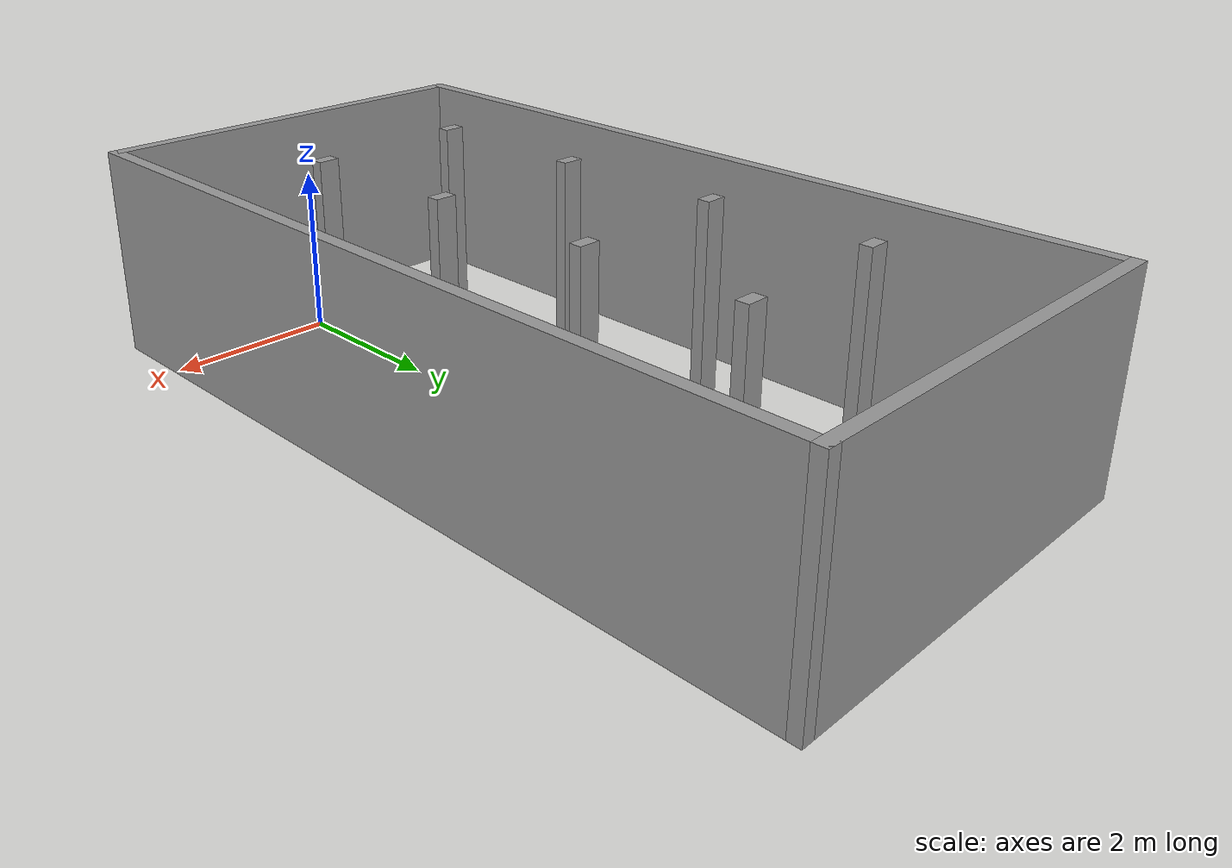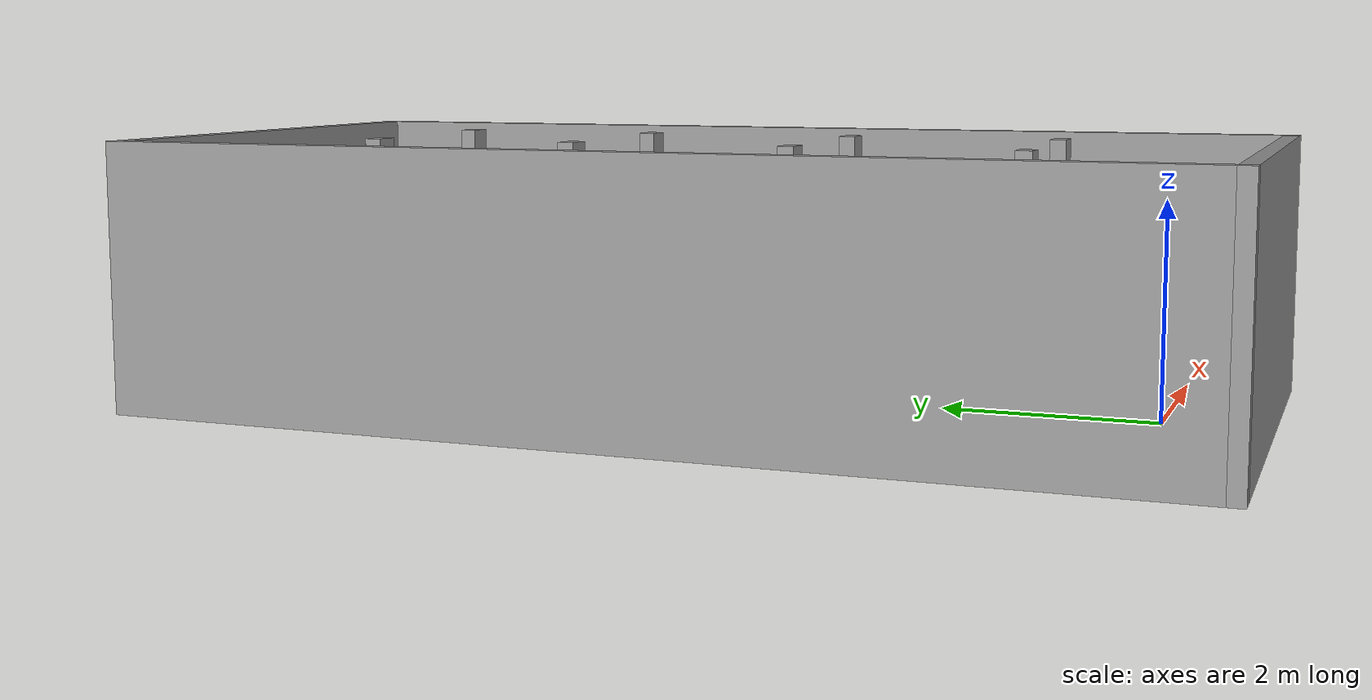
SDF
<?xml version='1.0'?>
<sdf version='1.7'>
  <model name='pole'>
    <pose>-0.435 4.015 0 0 -0 0</pose>
    <link name='Wall_1'>
      <collision name='Wall_1_Collision'>
        <geometry>
          <box>
            <size>10 0.15 2.5</size>
          </box>
        </geometry>
        <pose>0 0 1.25 0 -0 0</pose>
      </collision>
      <visual name='Wall_1_Visual'>
        <pose>0 0 1.25 0 -0 0</pose>
        <geometry>
          <box>
            <size>10 0.15 2.5</size>
          </box>
        </geometry>
        <material>
          <script>
            <uri>file://media/materials/scripts/gazebo.material</uri>
            <name>Gazebo/Grey</name>
          </script>
          <ambient>1 1 1 1</ambient>
        </material>
        <meta>
          <layer>0</layer>
        </meta>
      </visual>
      <pose>2.425 0 0 0 -0 1.5708</pose>
    </link>
    <link name='Wall_11'>
      <collision name='Wall_11_Collision'>
        <geometry>
          <box>
            <size>0.25 0.15 2.5</size>
          </box>
        </geometry>
        <pose>0 0 1.25 0 -0 0</pose>
      </collision>
      <visual name='Wall_11_Visual'>
        <pose>0 0 1.25 0 -0 0</pose>
        <geometry>
          <box>
            <size>0.25 0.15 2.5</size>
          </box>
        </geometry>
        <material>
          <script>
            <uri>file://media/materials/scripts/gazebo.material</uri>
            <name>Gazebo/Grey</name>
          </script>
          <ambient>1 1 1 1</ambient>
        </material>
        <meta>
          <layer>0</layer>
        </meta>
      </visual>
      <pose>-1.13066 1.03079 0 0 -0 3.14159</pose>
    </link>
    <link name='Wall_13'>
      <collision name='Wall_13_Collision'>
        <geometry>
          <box>
            <size>0.25 0.15 2.5</size>
          </box>
        </geometry>
        <pose>0 0 1.25 0 -0 0</pose>
      </collision>
      <visual name='Wall_13_Visual'>
        <pose>0 0 1.25 0 -0 0</pose>
        <geometry>
          <box>
            <size>0.25 0.15 2.5</size>
          </box>
        </geometry>
        <material>
          <script>
            <uri>file://media/materials/scripts/gazebo.material</uri>
            <name>Gazebo/Grey</name>
          </script>
          <ambient>1 1 1 1</ambient>
        </material>
        <meta>
          <layer>0</layer>
        </meta>
      </visual>
      <pose>-1.15309 2.97885 0 0 -0 0</pose>
    </link>
    <link name='Wall_15'>
      <collision name='Wall_15_Collision'>
        <geometry>
          <box>
            <size>0.25 0.15 2.5</size>
          </box>
        </geometry>
        <pose>0 0 1.25 0 -0 0</pose>
      </collision>
      <visual name='Wall_15_Visual'>
        <pose>0 0 1.25 0 -0 0</pose>
        <geometry>
          <box>
            <size>0.25 0.15 2.5</size>
          </box>
        </geometry>
        <material>
          <script>
            <uri>file://media/materials/scripts/gazebo.material</uri>
            <name>Gazebo/Grey</name>
          </script>
          <ambient>1 1 1 1</ambient>
        </material>
        <meta>
          <layer>0</layer>
        </meta>
      </visual>
      <pose>0.877698 -2.97682 0 0 -0 0</pose>
    </link>
    <link name='Wall_17'>
      <collision name='Wall_17_Collision'>
        <geometry>
          <box>
            <size>0.25 0.15 2.5</size>
          </box>
        </geometry>
        <pose>0 0 1.25 0 -0 0</pose>
      </collision>
      <visual name='Wall_17_Visual'>
        <pose>0 0 1.25 0 -0 0</pose>
        <geometry>
          <box>
            <size>0.25 0.15 2.5</size>
          </box>
        </geometry>
        <material>
          <script>
            <uri>file://media/materials/scripts/gazebo.material</uri>
            <name>Gazebo/Grey</name>
          </script>
          <ambient>1 1 1 1</ambient>
        </material>
        <meta>
          <layer>0</layer>
        </meta>
      </visual>
      <pose>0.811044 -0.989067 0 0 -0 0</pose>
    </link>
    <link name='Wall_19'>
      <collision name='Wall_19_Collision'>
        <geometry>
          <box>
            <size>0.25 0.15 2.5</size>
          </box>
        </geometry>
        <pose>0 0 1.25 0 -0 0</pose>
      </collision>
      <visual name='Wall_19_Visual'>
        <pose>0 0 1.25 0 -0 0</pose>
        <geometry>
          <box>
            <size>0.25 0.15 2.5</size>
          </box>
        </geometry>
        <material>
          <script>
            <uri>file://media/materials/scripts/gazebo.material</uri>
            <name>Gazebo/Grey</name>
          </script>
          <ambient>1 1 1 1</ambient>
        </material>
        <meta>
          <layer>0</layer>
        </meta>
      </visual>
      <pose>0.765418 1.0489 0 0 -0 0</pose>
    </link>
    <link name='Wall_2'>
      <collision name='Wall_2_Collision'>
        <geometry>
          <box>
            <size>5 0.15 2.5</size>
          </box>
        </geometry>
        <pose>0 0 1.25 0 -0 0</pose>
      </collision>
      <visual name='Wall_2_Visual'>
        <pose>0 0 1.25 0 -0 0</pose>
        <geometry>
          <box>
            <size>5 0.15 2.5</size>
          </box>
        </geometry>
        <material>
          <script>
            <uri>file://media/materials/scripts/gazebo.material</uri>
            <name>Gazebo/Grey</name>
          </script>
          <ambient>1 1 1 1</ambient>
        </material>
        <meta>
          <layer>0</layer>
        </meta>
      </visual>
      <pose>-0 4.925 0 0 -0 3.14159</pose>
    </link>
    <link name='Wall_21'>
      <collision name='Wall_21_Collision'>
        <geometry>
          <box>
            <size>0.25 0.15 2.5</size>
          </box>
        </geometry>
        <pose>0 0 1.25 0 -0 0</pose>
      </collision>
      <visual name='Wall_21_Visual'>
        <pose>0 0 1.25 0 -0 0</pose>
        <geometry>
          <box>
            <size>0.25 0.15 2.5</size>
          </box>
        </geometry>
        <material>
          <script>
            <uri>file://media/materials/scripts/gazebo.material</uri>
            <name>Gazebo/Grey</name>
          </script>
          <ambient>1 1 1 1</ambient>
        </material>
        <meta>
          <layer>0</layer>
        </meta>
      </visual>
      <pose>0.771063 3.02442 0 0 -0 0</pose>
    </link>
    <link name='Wall_4'>
      <collision name='Wall_4_Collision'>
        <geometry>
          <box>
            <size>5 0.15 2.5</size>
          </box>
        </geometry>
        <pose>0 0 1.25 0 -0 0</pose>
      </collision>
      <visual name='Wall_4_Visual'>
        <pose>0 0 1.25 0 -0 0</pose>
        <geometry>
          <box>
            <size>5 0.15 2.5</size>
          </box>
        </geometry>
        <material>
          <script>
            <uri>file://media/materials/scripts/gazebo.material</uri>
            <name>Gazebo/Grey</name>
          </script>
          <ambient>1 1 1 1</ambient>
        </material>
        <meta>
          <layer>0</layer>
        </meta>
      </visual>
      <pose>-0 -4.925 0 0 -0 3.14159</pose>
    </link>
    <link name='Wall_5'>
      <collision name='Wall_5_Collision'>
        <geometry>
          <box>
            <size>10 0.15 2.5</size>
          </box>
        </geometry>
        <pose>0 0 1.25 0 -0 0</pose>
      </collision>
      <visual name='Wall_5_Visual'>
        <pose>0 0 1.25 0 -0 0</pose>
        <geometry>
          <box>
            <size>10 0.15 2.5</size>
          </box>
        </geometry>
        <material>
          <script>
            <uri>file://media/materials/scripts/gazebo.material</uri>
            <name>Gazebo/Grey</name>
          </script>
          <ambient>1 1 1 1</ambient>
        </material>
        <meta>
          <layer>0</layer>
        </meta>
      </visual>
      <pose>-2.425 0 0 0 -0 1.5708</pose>
    </link>
    <link name='Wall_7'>
      <collision name='Wall_7_Collision'>
        <geometry>
          <box>
            <size>0.25 0.15 2.5</size>
          </box>
        </geometry>
        <pose>0 0 1.25 0 -0 0</pose>
      </collision>
      <visual name='Wall_7_Visual'>
        <pose>0 0 1.25 0 -0 0</pose>
        <geometry>
          <box>
            <size>0.25 0.15 2.5</size>
          </box>
        </geometry>
        <material>
          <script>
            <uri>file://media/materials/scripts/gazebo.material</uri>
            <name>Gazebo/Grey</name>
          </script>
          <ambient>1 1 1 1</ambient>
        </material>
        <meta>
          <layer>0</layer>
        </meta>
      </visual>
      <pose>-1.04733 -3.04731 0 0 -0 3.14159</pose>
    </link>
    <link name='Wall_9'>
      <collision name='Wall_9_Collision'>
        <geometry>
          <box>
            <size>0.25 0.15 2.5</size>
          </box>
        </geometry>
        <pose>0 0 1.25 0 -0 0</pose>
      </collision>
      <visual name='Wall_9_Visual'>
        <pose>0 0 1.25 0 -0 0</pose>
        <geometry>
          <box>
            <size>0.25 0.15 2.5</size>
          </box>
        </geometry>
        <material>
          <script>
            <uri>file://media/materials/scripts/gazebo.material</uri>
            <name>Gazebo/Grey</name>
          </script>
          <ambient>1 1 1 1</ambient>
        </material>
        <meta>
          <layer>0</layer>
        </meta>
      </visual>
      <pose>-1.07775 -1.00934 0 0 -0 3.14159</pose>
    </link>
    <static>1</static>
  </model>
</sdf>
